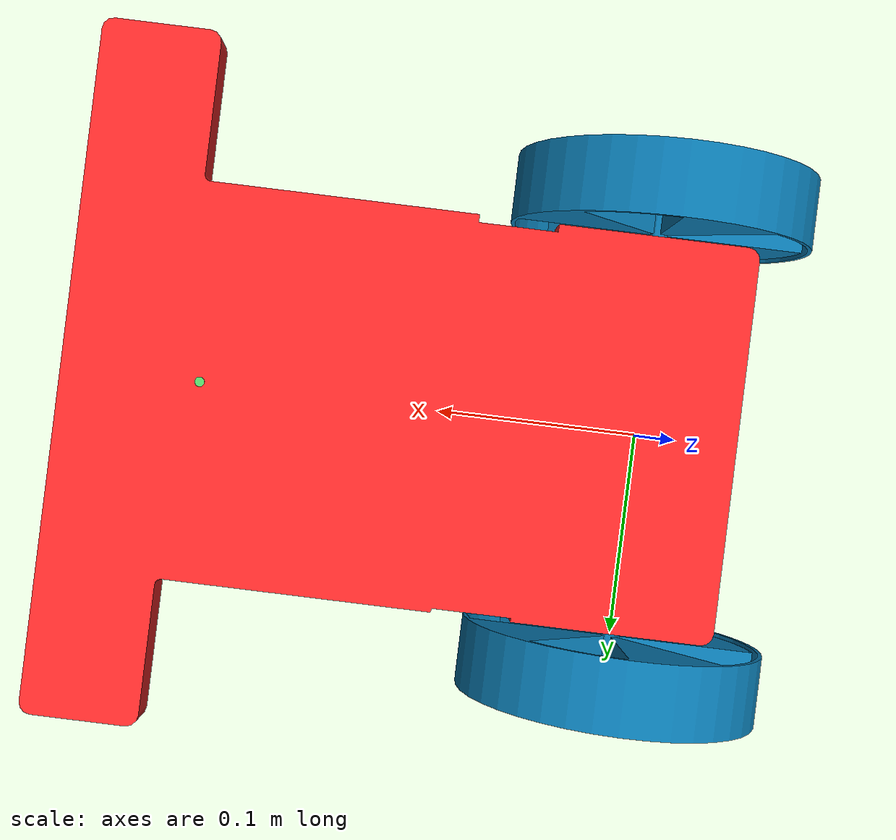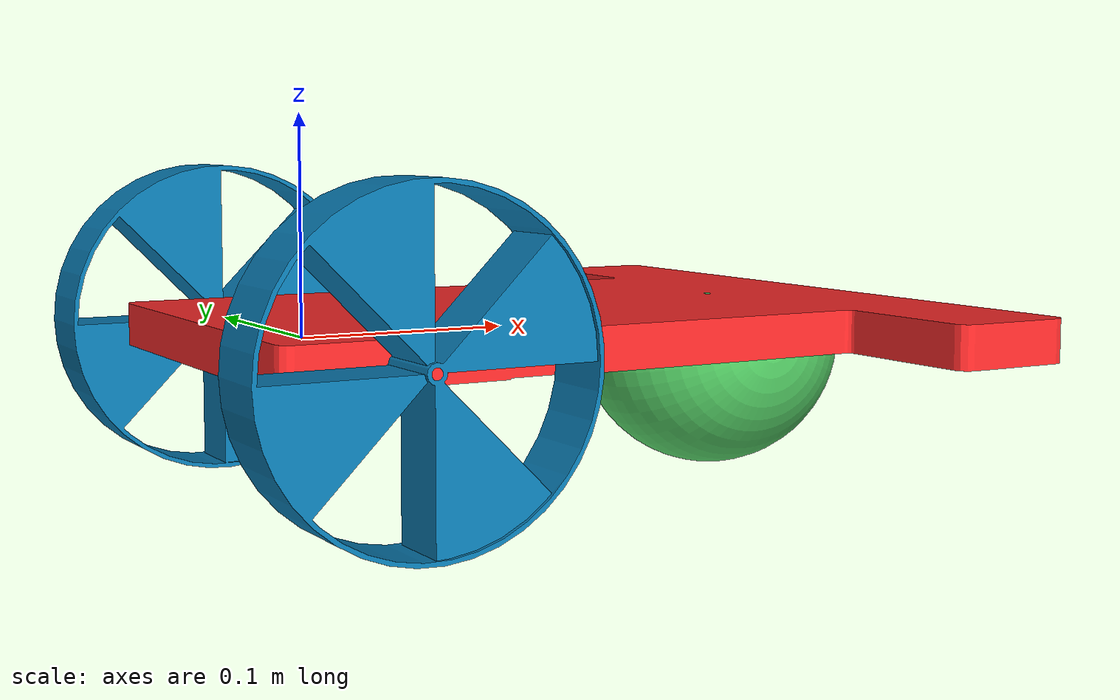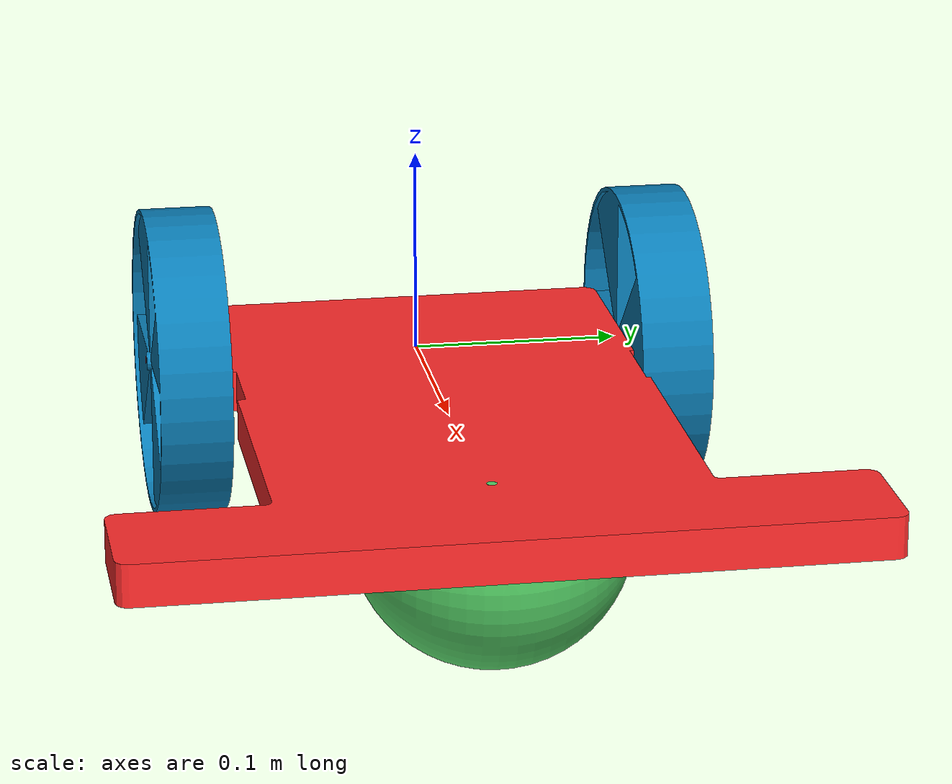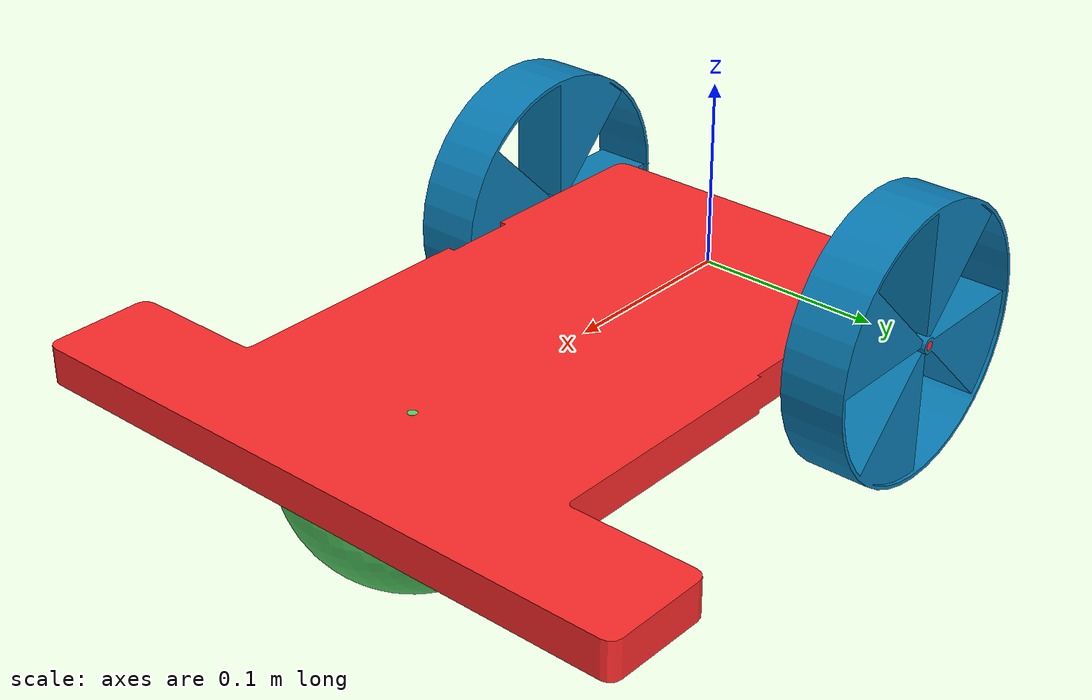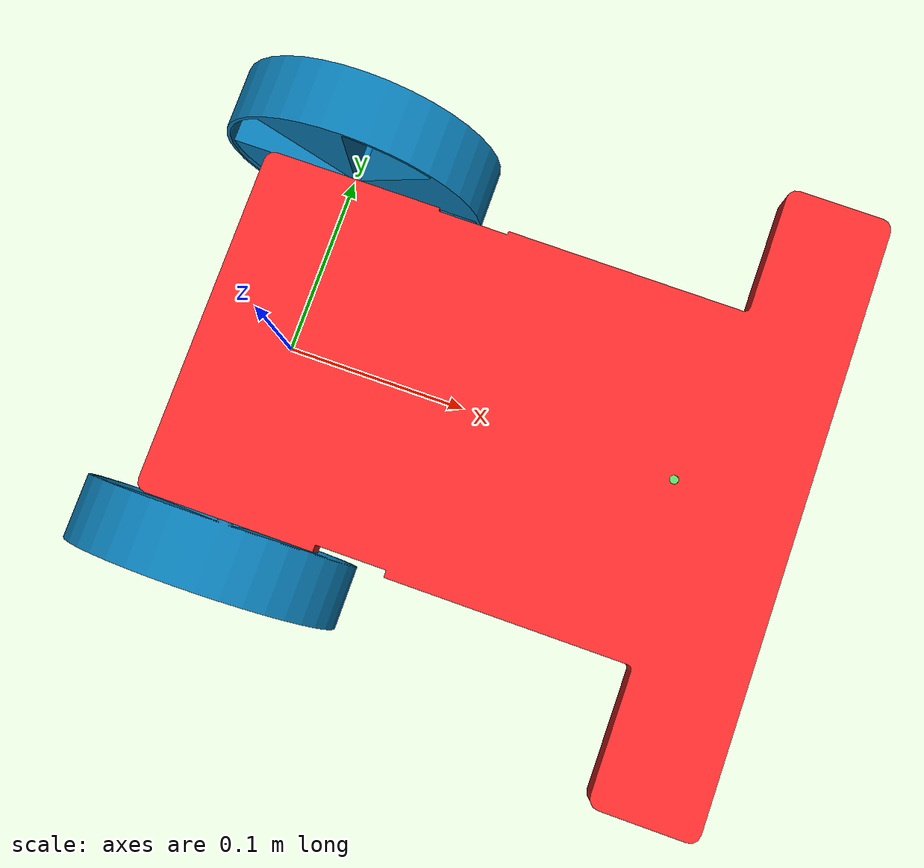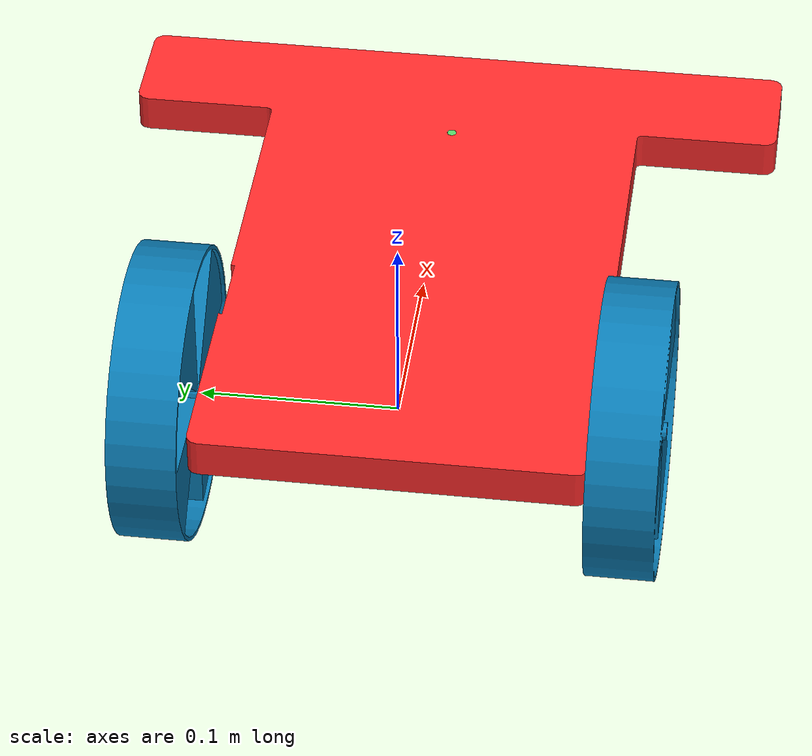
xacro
<?xml version="1.0" encoding="utf-8"?>
<robot
  name="my_robot" xmlns:xacro="http://www.ros.org/wiki/xacro">

  <!--BASE LINK-->
  <link
    name="base_link">
  </link>

  <!--BODY LINK-->
  <link
    name="body_link">
    <inertial>
      <origin
        xyz="0.186415105716513 0.000101085633360656 2.77555756156289E-17"
        rpy="0 0 0" />
      <mass
        value="1.5353319244313" />
      <inertia
        ixx="0.00802378289538806"
        ixy="1.00748244072014E-05"
        ixz="-3.46725970451043E-20"
        iyy="0.016304209429724"
        iyz="-1.8435318670307E-20"
        izz="0.0242257241981229" />
    </inertial>
    <visual>
      <origin
        xyz="0 0 0"
        rpy="0 0 0" />
      <geometry>
        <mesh
          filename="package://robot_package/meshes/body_link.STL" />
      </geometry>
      <material
        name="">
        <color
          rgba="1 0.168627450980392 0.168627450980392 1" />
      </material>
    </visual>
    <collision>
      <origin
        xyz="0 0 0"
        rpy="0 0 0" />
      <geometry>
        <mesh
          filename="package://robot_package/meshes/body_link.STL" />
      </geometry>
    </collision>
  </link>

  <!--BODY JOINT-->
  <joint
    name="body_joint"
    type="fixed">
    <origin
      xyz="-0.05 0 0"
      rpy="0 0 0" />
    <parent
      link="base_link" />
    <child
      link="body_link" />
    <axis
      xyz="0 0 0" />
  </joint>

  <!--LEFT WHEEL LINK-->
  <link
    name="left_wheel_link">
    <inertial>
      <origin
        xyz="0 2.77555756156289E-17 -7.04731412115578E-19"
        rpy="0 0 0" />
      <mass
        value="0.292594195287495" />
      <inertia
        ixx="0.000459027566459344"
        ixy="1.32348898008484E-20"
        ixz="-3.84638984837158E-20"
        iyy="0.000459027566459344"
        iyz="-5.7902642878712E-21"
        izz="0.00086969149964065" />
    </inertial>
    <visual>
      <origin
        xyz="0 0 0"
        rpy="0 0 0" />
      <geometry>
        <mesh
          filename="package://robot_package/meshes/left_wheel_link.STL" />
      </geometry>
      <material
        name="">
        <color
          rgba="0.0392156862745098 0.490196078431373 0.709803921568627 1" />
      </material>
    </visual>
    <collision>
      <origin
        xyz="0 0 0"
        rpy="0 0 0" />
      <geometry>
        <mesh
          filename="package://robot_package/meshes/left_wheel_link.STL" />
      </geometry>
    </collision>
  </link>

  <!--LEFT WHEEL JOINT-->
  <joint
    name="left_wheel_joint"
    type="continuous">
    <origin
      xyz="0.05 0.1175 0"
      rpy="-1.5708 0 0" />
    <parent
      link="body_link" />
    <child
      link="left_wheel_link" />
    <axis
      xyz="0 0 1" />
  </joint>

  <!--RIGHT WHEEL LINK-->
  <link
    name="right_wheel_link">
    <inertial>
      <origin
        xyz="0 0 2.7756E-17"
        rpy="0 0 0" />
      <mass
        value="0.29259" />
      <inertia
        ixx="0.00045903"
        ixy="-4.2766E-20"
        ixz="5.612E-20"
        iyy="0.00045903"
        iyz="-6.6443E-21"
        izz="0.00086969" />
    </inertial>
    <visual>
      <origin
        xyz="0 0 0"
        rpy="0 0 0" />
      <geometry>
        <mesh
          filename="package://robot_package/meshes/right_wheel_link.STL" />
      </geometry>
      <material
        name="">
        <color
          rgba="0.039216 0.4902 0.7098 1" />
      </material>
    </visual>
    <collision>
      <origin
        xyz="0 0 0"
        rpy="0 0 0" />
      <geometry>
        <mesh
          filename="package://robot_package/meshes/right_wheel_link.STL" />
      </geometry>
    </collision>
  </link>

  <!--RIGHT WHEEL JOINT-->
  <joint
    name="right_wheel_joint"
    type="continuous">
    <origin
      xyz="0.05 -0.1175 0"
      rpy="1.5708 0 0" />
    <parent
      link="body_link" />
    <child
      link="right_wheel_link" />
    <axis
      xyz="0 0 -1" />
  </joint>

  <!--CASTER WHEEL LINK-->
  <link
    name="caster_wheel_link">
    <inertial>
      <origin
        xyz="0 0 0"
        rpy="0 0 0" />
      <mass
        value="0" />
      <inertia
        ixx="0"
        ixy="0"
        ixz="0"
        iyy="0"
        iyz="0"
        izz="0" />
    </inertial>
    <visual>
      <origin
        xyz="0 0 0"
        rpy="0 0 0" />
      <geometry>
        <mesh
          filename="package://robot_package/meshes/caster_wheel_link.STL" />
      </geometry>
      <material
        name="">
        <color
          rgba="0.34118 0.83922 0.41176 1" />
      </material>
    </visual>
    <collision>
      <origin
        xyz="0 0 0"
        rpy="0 0 0" />
      <geometry>
        <mesh
          filename="package://robot_package/meshes/caster_wheel_link.STL" />
      </geometry>
    </collision>
  </link>

<!--CASTER WHEEL JOINT-->
  <joint
    name="caster_wheel_joint"
    type="fixed">
    <origin
      xyz="0.27 0 -0.01"
      rpy="0 0 0" />
    <parent
      link="body_link" />
    <child
      link="caster_wheel_link" />
    <axis
      xyz="0 0 1" />
  </joint>
</robot>
